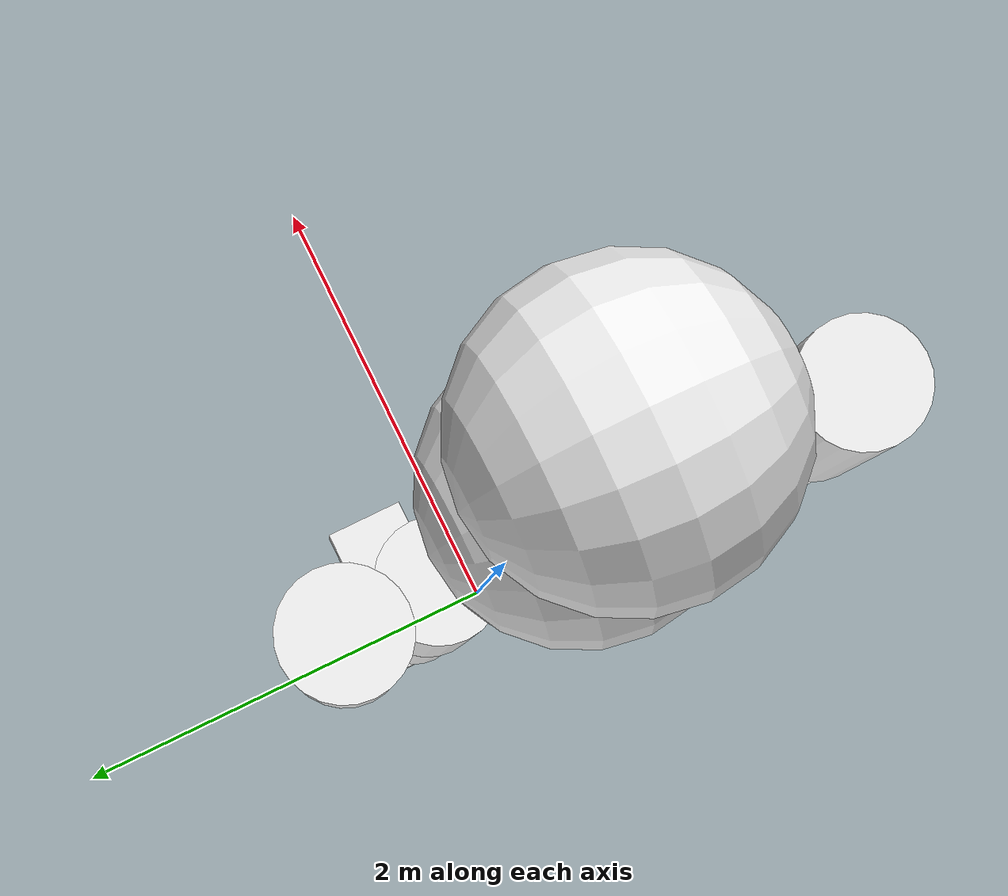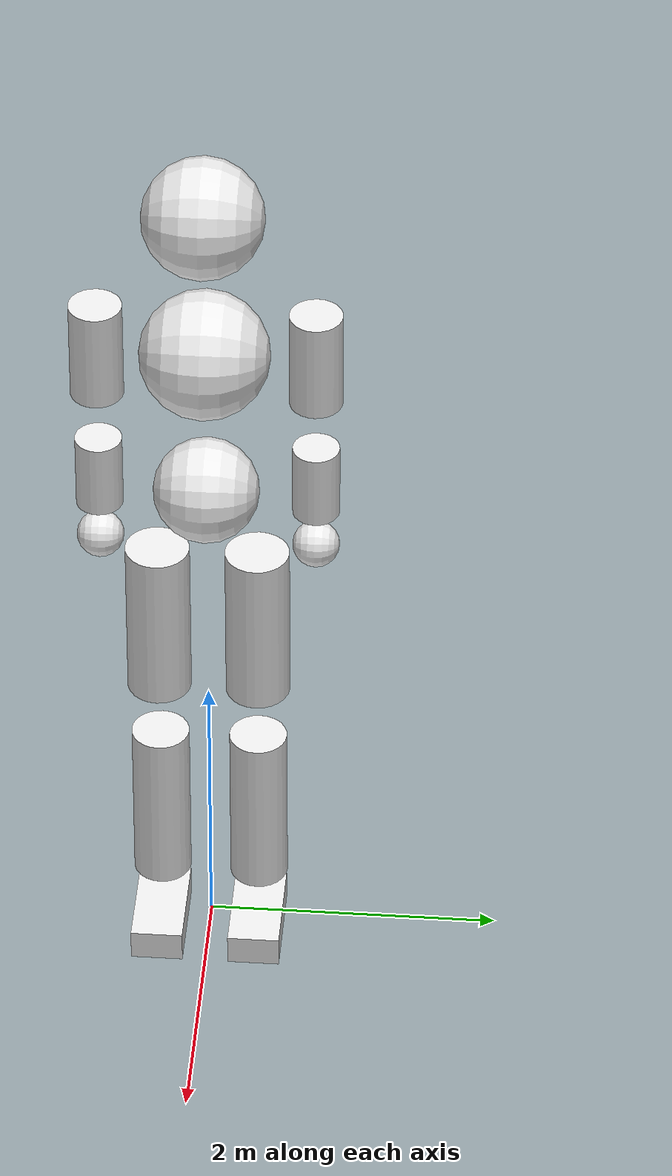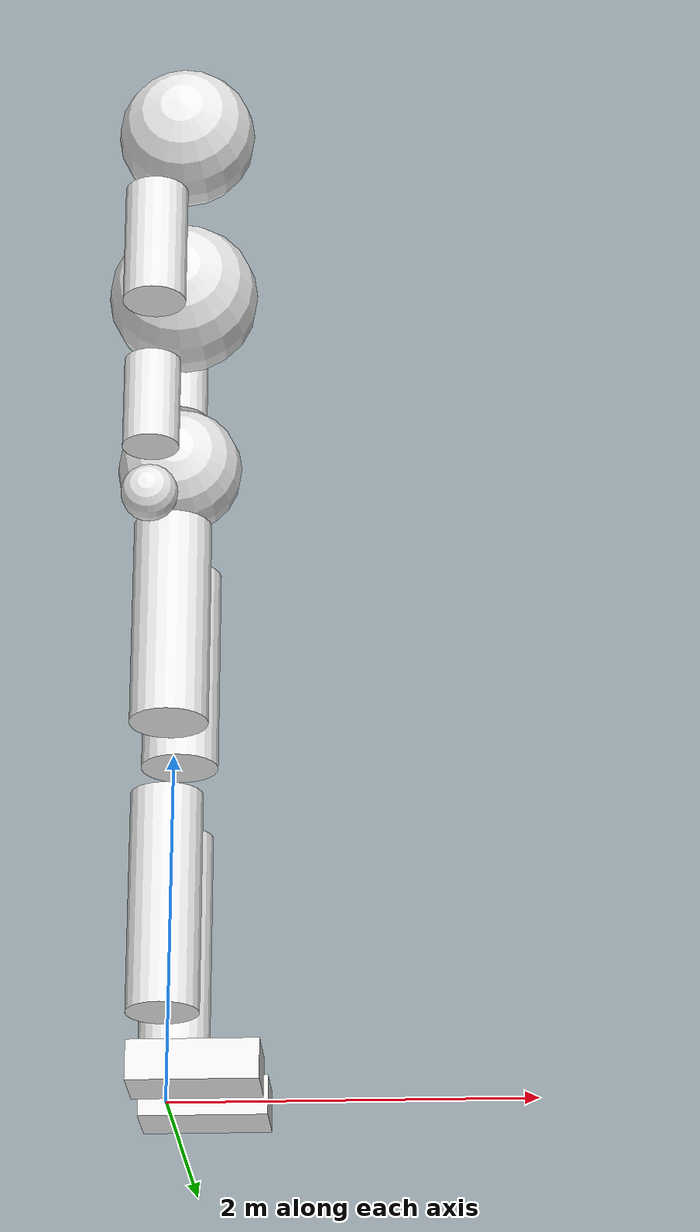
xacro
<?xml version="1.0" ?>
<!-- |    This document was autogenerated by xacro from /home/soohyeok/catkin_ws/src/humanoid_shp/urdf/humanoid_shp.urdf.xacro | -->
<!-- |    EDITING THIS FILE BY HAND IS NOT RECOMMENDED                                 | -->
<robot name="humanoid_shp" xmlns:xacro="http://www.ros.org/wiki/xacro">
    <link name="base">

<inertial>
            <origin rpy="0 0 0" xyz="0 0 0" />
            <mass value="0.0001" />
            <inertia ixx="0.0001" ixy="0" ixz="0" iyy="0.0001" iyz="0" izz="0.0001" />
        </inertial>

    </link>
    <link name="root">

<inertial>
            <origin rpy="0 0 0" xyz="0.000000 0.280000 0.000000" />
            <mass value="6.000000" />
            <inertia ixx="0.1" ixy="0" ixz="0" iyy="0.1" iyz="0" izz="0.1" />
        </inertial>

        <collision>
            <origin rpy="0 0 0" xyz="0.000000 0.280000 0.000000" />
            <geometry>
                <sphere radius="0.360000" />
            </geometry>
        </collision>
        <visual>
            <origin rpy="0 0 0" xyz="0.000000 0.280000 0.000000" />
            <geometry>
                <sphere radius="0.360000" />
            </geometry>
        </visual>
    </link>
    <joint name="root" type="fixed">
        <parent link="base" />
        <child link="root" />
        <origin rpy="1.57 0 0" xyz="0.000000 0.000000 3.500000" />
    </joint>
    <link name="chest">

<inertial>
            <origin rpy="0 0 0" xyz="0.000000 0.480000 0.000000" />
            <mass value="14.000000" />
            <inertia ixx="0.1" ixy="0" ixz="0" iyy="0.1" iyz="0" izz="0.1" />
        </inertial>

        <collision>
            <origin rpy="0 0 0" xyz="0.000000 0.480000 0.000000" />
            <geometry>
                <sphere radius="0.440000" />
            </geometry>
        </collision>
        <visual>
            <origin rpy="0 0 0" xyz="0.000000 0.480000 0.000000" />
            <geometry>
                <sphere radius="0.440000" />
            </geometry>
        </visual>
    </link>
    <joint name="chest" type="continuous">
        <parent link="root" />
        <child link="chest" />
        <origin rpy="0 0 0" xyz="0.000000 0.944604 0.000000" />
        <axis xyz="0.000000 0.000000 1.000000" />
    </joint>
    <link name="neck">

<inertial>
            <origin rpy="0 0 0" xyz="0.000000 0.700000 0.000000" />
            <mass value="2.000000" />
            <inertia ixx="0.1" ixy="0" ixz="0" iyy="0.1" iyz="0" izz="0.1" />
        </inertial>

        <collision>
            <origin rpy="0 0 0" xyz="0.000000 0.700000 0.000000" />
            <geometry>
                <sphere radius="0.410000" />
            </geometry>
        </collision>
        <visual>
            <origin rpy="0 0 0" xyz="0.000000 0.700000 0.000000" />
            <geometry>
                <sphere radius="0.410000" />
            </geometry>
        </visual>
    </link>
    <joint name="neck" type="continuous">
        <parent link="chest" />
        <child link="neck" />
        <origin rpy="0 0 0" xyz="0.000000 0.895576 0.000000" />
        <axis xyz="1.000000 1.000000 0.000000" />
    </joint>
    <link name="right_hip">

<inertial>
            <origin rpy="0 0 0" xyz="0.000000 -0.840000 0.000000" />
            <mass value="4.500000" />
            <inertia ixx="0.1" ixy="0" ixz="0" iyy="0.1" iyz="0" izz="0.1" />
        </inertial>

        <collision>
            <origin rpy="-1.570796 0 0" xyz="0.000000 -0.840000 0.000000" />
            <geometry>
                <cylinder length="1.200000" radius="0.220000" />
            </geometry>
        </collision>
        <visual>
            <origin rpy="-1.570796 0 0" xyz="0.000000 -0.840000 0.000000" />
            <geometry>
                <cylinder length="1.200000" radius="0.220000" />
            </geometry>
        </visual>
    </link>
    <joint name="right_hip" type="continuous">
        <parent link="root" />
        <child link="right_hip" />
        <origin rpy="0 0 0" xyz="0.000000 0.000000 0.339548" />
        <axis xyz="0.000000 0.000000 1.000000" />
    </joint>
    <link name="right_knee">

<inertial>
            <origin rpy="0 0 0" xyz="0.000000 -0.800000 0.000000" />
            <mass value="3.000000" />
            <inertia ixx="0.1" ixy="0" ixz="0" iyy="0.1" iyz="0" izz="0.1" />
        </inertial>

        <collision>
            <origin rpy="-1.570796 0 0" xyz="0.000000 -0.800000 0.000000" />
            <geometry>
                <cylinder length="1.240000" radius="0.200000" />
            </geometry>
        </collision>
        <visual>
            <origin rpy="-1.570796 0 0" xyz="0.000000 -0.800000 0.000000" />
            <geometry>
                <cylinder length="1.240000" radius="0.200000" />
            </geometry>
        </visual>
    </link>
    <joint name="right_knee" type="revolute">
        <parent link="right_hip" />
        <child link="right_knee" />
        <limit effort="1000.0" lower="-3.14" upper="0." velocity="0.5" />
        <origin rpy="0 0 0" xyz="0.000000 -1.686184 0.000000" />
        <axis xyz="0.000000 0.000000 1.000000" />
    </joint>
    <link name="right_ankle">

<inertial>
            <origin rpy="0 0 0" xyz="0.180000 -0.090000 0.000000" />
            <mass value="1.000000" />
            <inertia ixx="0.1" ixy="0" ixz="0" iyy="0.1" iyz="0" izz="0.1" />
        </inertial>

        <collision>
            <origin rpy="0 0 0" xyz="0.180000 -0.090000 0.000000" />
            <geometry>
                <box size="0.708000 0.220000 0.360000" />
            </geometry>
        </collision>
        <visual>
            <origin rpy="0 0 0" xyz="0.180000 -0.090000 0.000000" />
            <geometry>
                <box size="0.708000 0.220000 0.360000" />
            </geometry>
        </visual>
    </link>
    <joint name="right_ankle" type="continuous">
        <parent link="right_knee" />
        <child link="right_ankle" />
        <origin rpy="0 0 0" xyz="0.000000 -1.639480 0.000000" />
        <axis xyz="0.000000 0.000000 1.000000" />
    </joint>
    <link name="right_shoulder">

<inertial>
            <origin rpy="0 0 0" xyz="0.000000 -0.560000 0.000000" />
            <mass value="1.500000" />
            <inertia ixx="0.1" ixy="0" ixz="0" iyy="0.1" iyz="0" izz="0.1" />
        </inertial>

        <collision>
            <origin rpy="-1.570796 0 0" xyz="0.000000 -0.560000 0.000000" />
            <geometry>
                <cylinder length="0.720000" radius="0.180000" />
            </geometry>
        </collision>
        <visual>
            <origin rpy="-1.570796 0 0" xyz="0.000000 -0.560000 0.000000" />
            <geometry>
                <cylinder length="0.720000" radius="0.180000" />
            </geometry>
        </visual>
    </link>
    <joint name="right_shoulder" type="continuous">
        <parent link="chest" />
        <child link="right_shoulder" />
        <origin rpy="0 0 0" xyz="-0.096200 0.974000 0.732440" />
        <axis xyz="0.000000 0.000000 1.000000" />
    </joint>
    <link name="right_elbow">

<inertial>
            <origin rpy="0 0 0" xyz="0.000000 -0.480000 0.000000" />
            <mass value="1.000000" />
            <inertia ixx="0.1" ixy="0" ixz="0" iyy="0.1" iyz="0" izz="0.1" />
        </inertial>

        <collision>
            <origin rpy="-1.570796 0 0" xyz="0.000000 -0.480000 0.000000" />
            <geometry>
                <cylinder length="0.540000" radius="0.160000" />
            </geometry>
        </collision>
        <visual>
            <origin rpy="-1.570796 0 0" xyz="0.000000 -0.480000 0.000000" />
            <geometry>
                <cylinder length="0.540000" radius="0.160000" />
            </geometry>
        </visual>
    </link>
    <joint name="right_elbow" type="revolute">
        <parent link="right_shoulder" />
        <child link="right_elbow" />
        <limit effort="1000.0" lower="0" upper="3.14" velocity="0.5" />
        <origin rpy="0 0 0" xyz="0.000000 -1.099152 0.000000" />
        <axis xyz="0.000000 0.000000 1.000000" />
    </joint>
    <link name="right_wrist">

<inertial>
            <origin rpy="0 0 0" xyz="0.000000 0.000000 0.000000" />
            <mass value="0.500000" />
            <inertia ixx="0.1" ixy="0" ixz="0" iyy="0.1" iyz="0" izz="0.1" />
        </inertial>

        <collision>
            <origin rpy="0 0 0" xyz="0.000000 0.000000 0.000000" />
            <geometry>
                <sphere radius="0.160000" />
            </geometry>
        </collision>
        <visual>
            <origin rpy="0 0 0" xyz="0.000000 0.000000 0.000000" />
            <geometry>
                <sphere radius="0.160000" />
            </geometry>
        </visual>
    </link>
    <joint name="right_wrist" type="fixed">
        <parent link="right_elbow" />
        <child link="right_wrist" />
        <origin rpy="0 0 0" xyz="0.000000 -1.035788 0.000000" />
    </joint>
    <link name="left_hip">

<inertial>
            <origin rpy="0 0 0" xyz="0.000000 -0.840000 0.000000" />
            <mass value="4.500000" />
            <inertia ixx="0.1" ixy="0" ixz="0" iyy="0.1" iyz="0" izz="0.1" />
        </inertial>

        <collision>
            <origin rpy="-1.570796 0 0" xyz="0.000000 -0.840000 0.000000" />
            <geometry>
                <cylinder length="1.200000" radius="0.220000" />
            </geometry>
        </collision>
        <visual>
            <origin rpy="-1.570796 0 0" xyz="0.000000 -0.840000 0.000000" />
            <geometry>
                <cylinder length="1.200000" radius="0.220000" />
            </geometry>
        </visual>
    </link>
    <joint name="left_hip" type="continuous">
        <parent link="root" />
        <child link="left_hip" />
        <origin rpy="0 0 0" xyz="0.000000 0.000000 -0.339548" />
        <axis xyz="0.000000 0.000000 1.000000" />
    </joint>
    <link name="left_knee">

<inertial>
            <origin rpy="0 0 0" xyz="0.000000 -0.800000 0.000000" />
            <mass value="3.000000" />
            <inertia ixx="0.1" ixy="0" ixz="0" iyy="0.1" iyz="0" izz="0.1" />
        </inertial>

        <collision>
            <origin rpy="-1.570796 0 0" xyz="0.000000 -0.800000 0.000000" />
            <geometry>
                <cylinder length="1.240000" radius="0.200000" />
            </geometry>
        </collision>
        <visual>
            <origin rpy="-1.570796 0 0" xyz="0.000000 -0.800000 0.000000" />
            <geometry>
                <cylinder length="1.240000" radius="0.200000" />
            </geometry>
        </visual>
    </link>
    <joint name="left_knee" type="revolute">
        <parent link="left_hip" />
        <child link="left_knee" />
        <limit effort="1000.0" lower="-3.14" upper="0." velocity="0.5" />
        <origin rpy="0 0 0" xyz="0.000000 -1.686184 0.000000" />
        <axis xyz="0.000000 0.000000 1.000000" />
    </joint>
    <link name="left_ankle">

<inertial>
            <origin rpy="0 0 0" xyz="0.180000 -0.090000 0.000000" />
            <mass value="1.000000" />
            <inertia ixx="0.1" ixy="0" ixz="0" iyy="0.1" iyz="0" izz="0.1" />
        </inertial>

        <collision>
            <origin rpy="0 0 0" xyz="0.180000 -0.090000 0.000000" />
            <geometry>
                <box size="0.708000 0.220000 0.360000" />
            </geometry>
        </collision>
        <visual>
            <origin rpy="0 0 0" xyz="0.180000 -0.090000 0.000000" />
            <geometry>
                <box size="0.708000 0.220000 0.360000" />
            </geometry>
        </visual>
    </link>
    <joint name="left_ankle" type="continuous">
        <parent link="left_knee" />
        <child link="left_ankle" />
        <origin rpy="0 0 0" xyz="0.000000 -1.639480 0.000000" />
        <axis xyz="0.000000 0.000000 1.000000" />
    </joint>
    <link name="left_shoulder">

<inertial>
            <origin rpy="0 0 0" xyz="0.000000 -0.560000 0.000000" />
            <mass value="1.500000" />
            <inertia ixx="0.1" ixy="0" ixz="0" iyy="0.1" iyz="0" izz="0.1" />
        </inertial>

        <collision>
            <origin rpy="-1.570796 0 0" xyz="0.000000 -0.560000 0.000000" />
            <geometry>
                <cylinder length="0.720000" radius="0.180000" />
            </geometry>
        </collision>
        <visual>
            <origin rpy="-1.570796 0 0" xyz="0.000000 -0.560000 0.000000" />
            <geometry>
                <cylinder length="0.720000" radius="0.180000" />
            </geometry>
        </visual>
    </link>
    <joint name="left_shoulder" type="continuous">
        <parent link="chest" />
        <child link="left_shoulder" />
        <origin rpy="0 0 0" xyz="-0.096200 0.974000 -0.732440" />
        <axis xyz="0.000000 0.000000 1.000000" />
    </joint>
    <link name="left_elbow">

<inertial>
            <origin rpy="0 0 0" xyz="0.000000 -0.480000 0.000000" />
            <mass value="1.000000" />
            <inertia ixx="0.1" ixy="0" ixz="0" iyy="0.1" iyz="0" izz="0.1" />
        </inertial>

        <collision>
            <origin rpy="-1.570796 0 0" xyz="0.000000 -0.480000 0.000000" />
            <geometry>
                <cylinder length="0.540000" radius="0.160000" />
            </geometry>
        </collision>
        <visual>
            <origin rpy="-1.570796 0 0" xyz="0.000000 -0.480000 0.000000" />
            <geometry>
                <cylinder length="0.540000" radius="0.160000" />
            </geometry>
        </visual>
    </link>
    <joint name="left_elbow" type="revolute">
        <parent link="left_shoulder" />
        <child link="left_elbow" />
        <limit effort="1000.0" lower="0" upper="3.14" velocity="0.5" />
        <origin rpy="0 0 0" xyz="0.000000 -1.099152 0.000000" />
        <axis xyz="0.000000 0.000000 1.000000" />
    </joint>
    <link name="left_wrist">

<inertial>
            <origin rpy="0 0 0" xyz="0.000000 0.000000 0.000000" />
            <mass value="0.500000" />
            <inertia ixx="0.1" ixy="0" ixz="0" iyy="0.1" iyz="0" izz="0.1" />
        </inertial>

        <collision>
            <origin rpy="0 0 0" xyz="0.000000 0.000000 0.000000" />
            <geometry>
                <sphere radius="0.160000" />
            </geometry>
        </collision>
        <visual>
            <origin rpy="0 0 0" xyz="0.000000 0.000000 0.000000" />
            <geometry>
                <sphere radius="0.160000" />
            </geometry>
        </visual>
    </link>
    <joint name="left_wrist" type="fixed">
        <parent link="left_elbow" />
        <child link="left_wrist" />
        <origin rpy="0 0 0" xyz="0.000000 -1.035788 0.000000" />
    </joint>
    <gazebo reference="base">
        <material>Gazebo/White</material>
    </gazebo>
    <gazebo reference="chest">
        <material>Gazebo/White</material>
    </gazebo>
    <gazebo reference="left_ankle">
        <material>Gazebo/White</material>
    </gazebo>
    <gazebo reference="left_elbow">
        <material>Gazebo/White</material>
    </gazebo>
    <gazebo reference="left_hip">
        <material>Gazebo/White</material>
    </gazebo>
    <gazebo reference="left_knee">
        <material>Gazebo/White</material>
    </gazebo>
    <gazebo reference="left_shoulder">
        <material>Gazebo/White</material>
    </gazebo>
    <gazebo reference="left_wrist">
        <material>Gazebo/White</material>
    </gazebo>
    <gazebo reference="neck">
        <material>Gazebo/White</material>
    </gazebo>
    <gazebo reference="right_ankle">
        <material>Gazebo/White</material>
    </gazebo>
    <gazebo reference="right_elbow">
        <material>Gazebo/White</material>
    </gazebo>
    <gazebo reference="right_hip">
        <material>Gazebo/White</material>
    </gazebo>
    <gazebo reference="right_wrist">
        <material>Gazebo/White</material>
    </gazebo>
    <gazebo reference="right_knee">
        <material>Gazebo/White</material>
    </gazebo>
    <gazebo reference="right_shoulder">
        <material>Gazebo/White</material>
    </gazebo>
    <gazebo reference="right_wrist">
        <material>Gazebo/White</material>
    </gazebo>
    <gazebo reference="root">
        <material>Gazebo/White</material>
    </gazebo>

<transmission name="tran1">
        <type>transmission_interface/SimpleTransmission</type>
        <joint name="chest">
            <hardwareInterface>hardware_interface/PositionJointInterface</hardwareInterface>
        </joint>
        <actuator name="motor1">
            <hardwareInterface>PositionJointInterface</hardwareInterface>
            <mechanicalReduction>1</mechanicalReduction>
        </actuator>
    </transmission>
    <transmission name="tran1">
        <type>transmission_interface/SimpleTransmission</type>
        <joint name="left_ankle">
            <hardwareInterface>hardware_interface/PositionJointInterface</hardwareInterface>
        </joint>
        <actuator name="motor1">
            <hardwareInterface>PositionJointInterface</hardwareInterface>
            <mechanicalReduction>1</mechanicalReduction>
        </actuator>
    </transmission>
    <transmission name="tran1">
        <type>transmission_interface/SimpleTransmission</type>
        <joint name="left_elbow">
            <hardwareInterface>hardware_interface/PositionJointInterface</hardwareInterface>
        </joint>
        <actuator name="motor1">
            <hardwareInterface>PositionJointInterface</hardwareInterface>
            <mechanicalReduction>1</mechanicalReduction>
        </actuator>
    </transmission>
    <transmission name="tran1">
        <type>transmission_interface/SimpleTransmission</type>
        <joint name="left_hip">
            <hardwareInterface>hardware_interface/PositionJointInterface</hardwareInterface>
        </joint>
        <actuator name="motor1">
            <hardwareInterface>PositionJointInterface</hardwareInterface>
            <mechanicalReduction>1</mechanicalReduction>
        </actuator>
    </transmission>
    <transmission name="tran1">
        <type>transmission_interface/SimpleTransmission</type>
        <joint name="left_knee">
            <hardwareInterface>hardware_interface/PositionJointInterface</hardwareInterface>
        </joint>
        <actuator name="motor1">
            <hardwareInterface>PositionJointInterface</hardwareInterface>
            <mechanicalReduction>1</mechanicalReduction>
        </actuator>
    </transmission>
    <transmission name="tran1">
        <type>transmission_interface/SimpleTransmission</type>
        <joint name="left_shoulder">
            <hardwareInterface>hardware_interface/PositionJointInterface</hardwareInterface>
        </joint>
        <actuator name="motor1">
            <hardwareInterface>PositionJointInterface</hardwareInterface>
            <mechanicalReduction>1</mechanicalReduction>
        </actuator>
    </transmission>
    <transmission name="tran1">
        <type>transmission_interface/SimpleTransmission</type>
        <joint name="neck">
            <hardwareInterface>hardware_interface/PositionJointInterface</hardwareInterface>
        </joint>
        <actuator name="motor1">
            <hardwareInterface>PositionJointInterface</hardwareInterface>
            <mechanicalReduction>1</mechanicalReduction>
        </actuator>
    </transmission>
    <transmission name="tran1">
        <type>transmission_interface/SimpleTransmission</type>
        <joint name="right_ankle">
            <hardwareInterface>hardware_interface/PositionJointInterface</hardwareInterface>
        </joint>
        <actuator name="motor1">
            <hardwareInterface>PositionJointInterface</hardwareInterface>
            <mechanicalReduction>1</mechanicalReduction>
        </actuator>
    </transmission>
    <transmission name="tran1">
        <type>transmission_interface/SimpleTransmission</type>
        <joint name="right_elbow">
            <hardwareInterface>hardware_interface/PositionJointInterface</hardwareInterface>
        </joint>
        <actuator name="motor1">
            <hardwareInterface>PositionJointInterface</hardwareInterface>
            <mechanicalReduction>1</mechanicalReduction>
        </actuator>
    </transmission>
    <transmission name="tran1">
        <type>transmission_interface/SimpleTransmission</type>
        <joint name="right_hip">
            <hardwareInterface>hardware_interface/PositionJointInterface</hardwareInterface>
        </joint>
        <actuator name="motor1">
            <hardwareInterface>PositionJointInterface</hardwareInterface>
            <mechanicalReduction>1</mechanicalReduction>
        </actuator>
    </transmission>
    <transmission name="tran1">
        <type>transmission_interface/SimpleTransmission</type>
        <joint name="right_knee">
            <hardwareInterface>hardware_interface/PositionJointInterface</hardwareInterface>
        </joint>
        <actuator name="motor1">
            <hardwareInterface>PositionJointInterface</hardwareInterface>
            <mechanicalReduction>1</mechanicalReduction>
        </actuator>
    </transmission>
    <transmission name="tran1">
        <type>transmission_interface/SimpleTransmission</type>
        <joint name="right_shoulder">
            <hardwareInterface>hardware_interface/PositionJointInterface</hardwareInterface>
        </joint>
        <actuator name="motor1">
            <hardwareInterface>PositionJointInterface</hardwareInterface>
            <mechanicalReduction>1</mechanicalReduction>
        </actuator>
    </transmission>
    <gazebo>
        <plugin filename="libgazebo_ros_control.so" name="gazebo_ros_control">
            <robotNamespace>/humanoid_shp</robotNamespace>
            <robotSimType>gazebo_ros_control/DefaultRobotHWSim</robotSimType>
            <legacyModeNS>true</legacyModeNS>
        </plugin>
    </gazebo>
    <transmission name="trans_chest">
        <type>transmission_interface/SimpleTransmission</type>
        <joint name="chest">
            <hardwareInterface>hardware_interface/EffortJointInterface</hardwareInterface>
        </joint>
        <actuator name="chest_motor">
            <hardwareInterface>hardware_interface/EffortJointInterface</hardwareInterface>
            <mechanicalReduction>1</mechanicalReduction>
        </actuator>
    </transmission>
    <transmission name="trans_neck">
        <type>transmission_interface/SimpleTransmission</type>
        <joint name="neck">
            <hardwareInterface>hardware_interface/EffortJointInterface</hardwareInterface>
        </joint>
        <actuator name="neck_motor">
            <hardwareInterface>hardware_interface/EffortJointInterface</hardwareInterface>
            <mechanicalReduction>1</mechanicalReduction>
        </actuator>
    </transmission>
    <transmission name="trans_right_hip">
        <type>transmission_interface/SimpleTransmission</type>
        <joint name="right_hip">
            <hardwareInterface>hardware_interface/EffortJointInterface</hardwareInterface>
        </joint>
        <actuator name="right_hip_motor">
            <hardwareInterface>hardware_interface/EffortJointInterface</hardwareInterface>
            <mechanicalReduction>1</mechanicalReduction>
        </actuator>
    </transmission>
    <transmission name="trans_right_knee">
        <type>transmission_interface/SimpleTransmission</type>
        <joint name="right_knee">
            <hardwareInterface>hardware_interface/EffortJointInterface</hardwareInterface>
        </joint>
        <actuator name="right_knee_motor">
            <hardwareInterface>hardware_interface/EffortJointInterface</hardwareInterface>
            <mechanicalReduction>1</mechanicalReduction>
        </actuator>
    </transmission>
    <transmission name="trans_right_ankle">
        <type>transmission_interface/SimpleTransmission</type>
        <joint name="right_ankle">
            <hardwareInterface>hardware_interface/EffortJointInterface</hardwareInterface>
        </joint>
        <actuator name="right_ankle_motor">
            <hardwareInterface>hardware_interface/EffortJointInterface</hardwareInterface>
            <mechanicalReduction>1</mechanicalReduction>
        </actuator>
    </transmission>
    <transmission name="trans_right_shoulder">
        <type>transmission_interface/SimpleTransmission</type>
        <joint name="right_shoulder">
            <hardwareInterface>hardware_interface/EffortJointInterface</hardwareInterface>
        </joint>
        <actuator name="right_shoulder_motor">
            <hardwareInterface>hardware_interface/EffortJointInterface</hardwareInterface>
            <mechanicalReduction>1</mechanicalReduction>
        </actuator>
    </transmission>
    <transmission name="trans_right_elbow">
        <type>transmission_interface/SimpleTransmission</type>
        <joint name="right_elbow">
            <hardwareInterface>hardware_interface/EffortJointInterface</hardwareInterface>
        </joint>
        <actuator name="right_elbow_motor">
            <hardwareInterface>hardware_interface/EffortJointInterface</hardwareInterface>
            <mechanicalReduction>1</mechanicalReduction>
        </actuator>
    </transmission>
    <transmission name="trans_left_hip">
        <type>transmission_interface/SimpleTransmission</type>
        <joint name="left_hip">
            <hardwareInterface>hardware_interface/EffortJointInterface</hardwareInterface>
        </joint>
        <actuator name="left_hip_motor">
            <hardwareInterface>hardware_interface/EffortJointInterface</hardwareInterface>
            <mechanicalReduction>1</mechanicalReduction>
        </actuator>
    </transmission>
    <transmission name="trans_left_knee">
        <type>transmission_interface/SimpleTransmission</type>
        <joint name="left_knee">
            <hardwareInterface>hardware_interface/EffortJointInterface</hardwareInterface>
        </joint>
        <actuator name="left_knee_motor">
            <hardwareInterface>hardware_interface/EffortJointInterface</hardwareInterface>
            <mechanicalReduction>1</mechanicalReduction>
        </actuator>
    </transmission>
    <transmission name="trans_left_ankle">
        <type>transmission_interface/SimpleTransmission</type>
        <joint name="left_ankle">
            <hardwareInterface>hardware_interface/EffortJointInterface</hardwareInterface>
        </joint>
        <actuator name="left_ankle_motor">
            <hardwareInterface>hardware_interface/EffortJointInterface</hardwareInterface>
            <mechanicalReduction>1</mechanicalReduction>
        </actuator>
    </transmission>
    <transmission name="trans_left_shoulder">
        <type>transmission_interface/SimpleTransmission</type>
        <joint name="left_shoulder">
            <hardwareInterface>hardware_interface/EffortJointInterface</hardwareInterface>
        </joint>
        <actuator name="left_shoulder_motor">
            <hardwareInterface>hardware_interface/EffortJointInterface</hardwareInterface>
            <mechanicalReduction>1</mechanicalReduction>
        </actuator>
    </transmission>
    <transmission name="trans_left_elbow">
        <type>transmission_interface/SimpleTransmission</type>
        <joint name="left_elbow">
            <hardwareInterface>hardware_interface/EffortJointInterface</hardwareInterface>
        </joint>
        <actuator name="left_elbow_motor">
            <hardwareInterface>hardware_interface/EffortJointInterface</hardwareInterface>
            <mechanicalReduction>1</mechanicalReduction>
        </actuator>
    </transmission>
    <gazebo>
        <plugin name="gazebo_ros_control" filename="libgazebo_ros_control.so">
            <robotNamespace>/humanoid_shp</robotNamespace>
            <robotSimType>gazebo_ros_control/DefaultRobotHWSim</robotSimType>
            <legacyModeNS>true</legacyModeNS>
        </plugin>
    </gazebo>
</robot>
